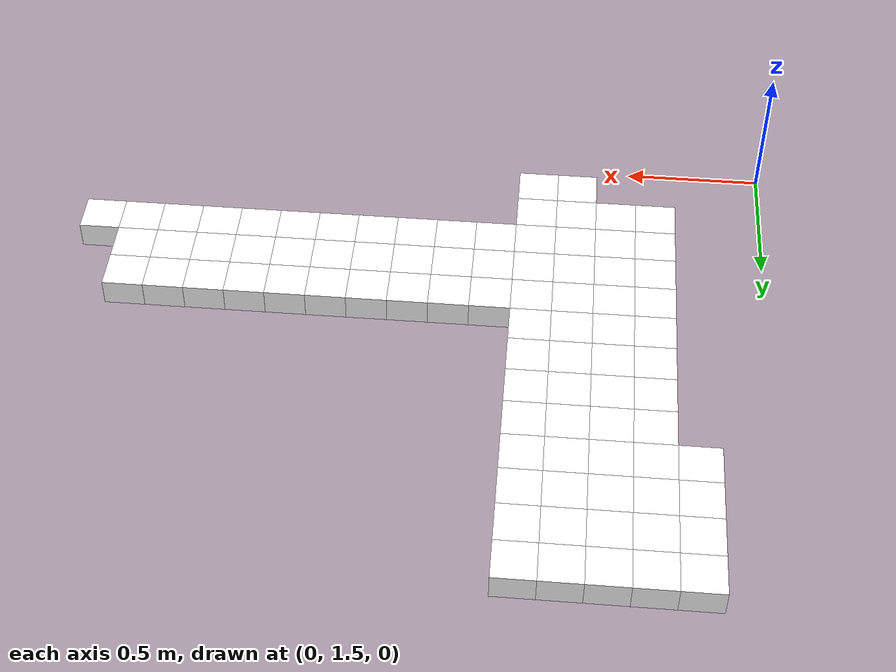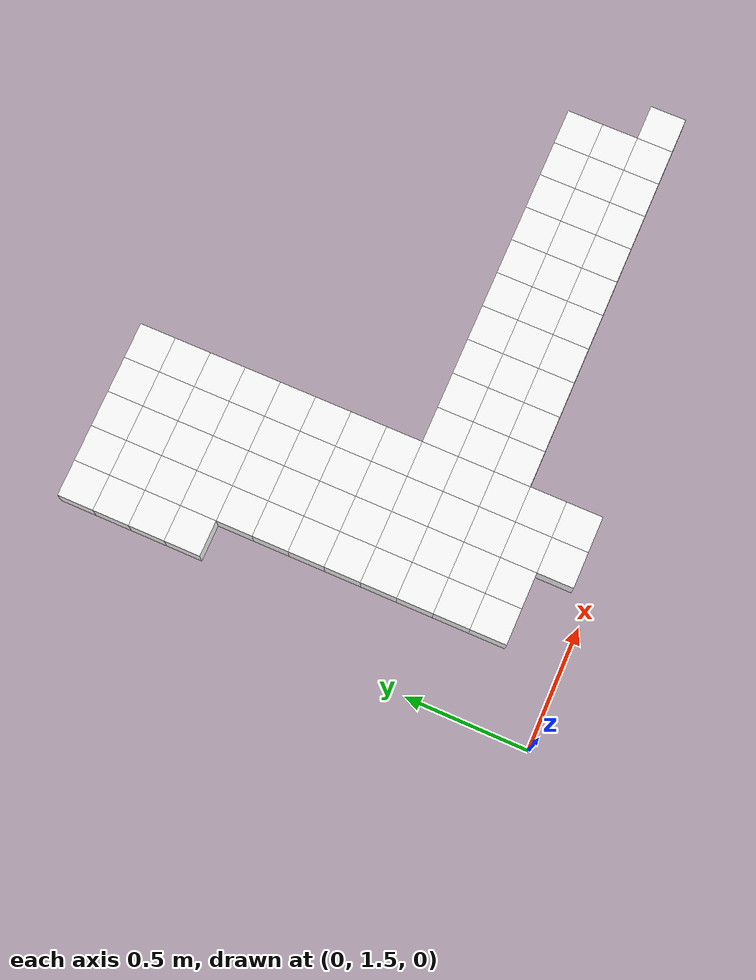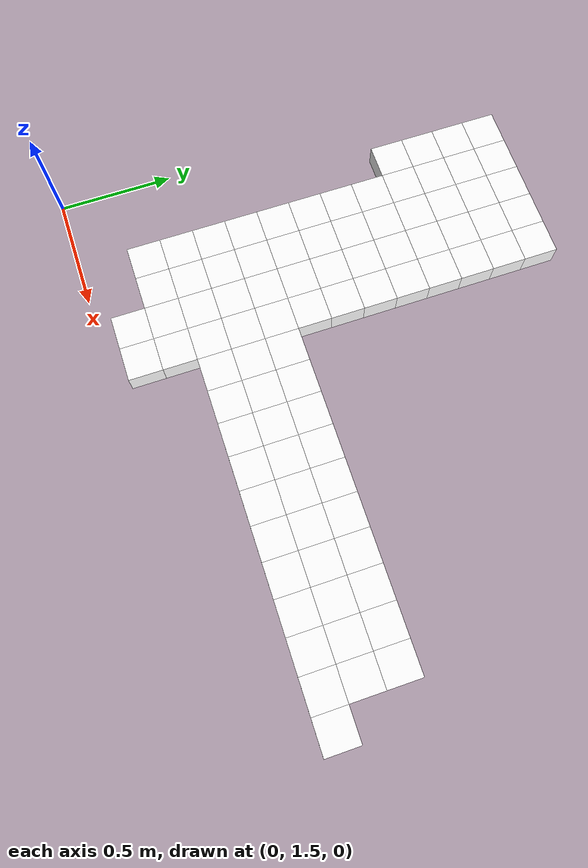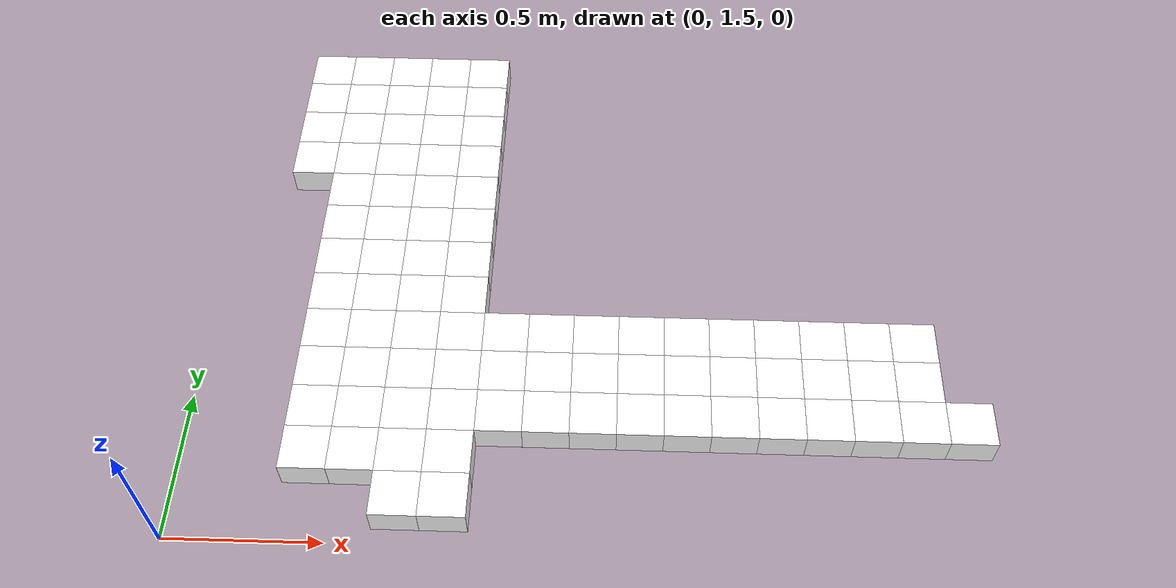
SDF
<sdf version="1.7">
 <world name="default">
  <include><uri>model://sun</uri></include>
  <model name="static_environment">
   <static>true</static>
   <link name="region_158">
    <pose>0.6999999999999993 1.65 0.0 0.0 0.0 0.0</pose>
    <collision name="region_158_collision">
     <geometry><box><size>0.15 0.15 0.1</size></box></geometry>
     <surface><friction><ode><mu>1.0</mu><mu2>1.0</mu2></ode></friction></surface>
    </collision>
    <visual name="region_158_visual">
     <geometry><box><size>0.15 0.15 0.1</size></box></geometry>
     <material><ambient>1.0 1.0 1.0 1.0</ambient><diffuse>1.0 1.0 1.0 1.0</diffuse></material>
    </visual>
   </link>
   <link name="region_159">
    <pose>0.8499999999999992 1.65 0.0 0.0 0.0 0.0</pose>
    <collision name="region_159_collision">
     <geometry><box><size>0.15 0.15 0.1</size></box></geometry>
     <surface><friction><ode><mu>1.0</mu><mu2>1.0</mu2></ode></friction></surface>
    </collision>
    <visual name="region_159_visual">
     <geometry><box><size>0.15 0.15 0.1</size></box></geometry>
     <material><ambient>1.0 1.0 1.0 1.0</ambient><diffuse>1.0 1.0 1.0 1.0</diffuse></material>
    </visual>
   </link>
   <link name="region_176">
    <pose>0.39999999999999947 1.7999999999999998 0.0 0.0 0.0 0.0</pose>
    <collision name="region_176_collision">
     <geometry><box><size>0.15 0.15 0.1</size></box></geometry>
     <surface><friction><ode><mu>1.0</mu><mu2>1.0</mu2></ode></friction></surface>
    </collision>
    <visual name="region_176_visual">
     <geometry><box><size>0.15 0.15 0.1</size></box></geometry>
     <material><ambient>1.0 1.0 1.0 1.0</ambient><diffuse>1.0 1.0 1.0 1.0</diffuse></material>
    </visual>
   </link>
   <link name="region_177">
    <pose>0.5499999999999994 1.7999999999999998 0.0 0.0 0.0 0.0</pose>
    <collision name="region_177_collision">
     <geometry><box><size>0.15 0.15 0.1</size></box></geometry>
     <surface><friction><ode><mu>1.0</mu><mu2>1.0</mu2></ode></friction></surface>
    </collision>
    <visual name="region_177_visual">
     <geometry><box><size>0.15 0.15 0.1</size></box></geometry>
     <material><ambient>1.0 1.0 1.0 1.0</ambient><diffuse>1.0 1.0 1.0 1.0</diffuse></material>
    </visual>
   </link>
   <link name="region_178">
    <pose>0.6999999999999993 1.7999999999999998 0.0 0.0 0.0 0.0</pose>
    <collision name="region_178_collision">
     <geometry><box><size>0.15 0.15 0.1</size></box></geometry>
     <surface><friction><ode><mu>1.0</mu><mu2>1.0</mu2></ode></friction></surface>
    </collision>
    <visual name="region_178_visual">
     <geometry><box><size>0.15 0.15 0.1</size></box></geometry>
     <material><ambient>1.0 1.0 1.0 1.0</ambient><diffuse>1.0 1.0 1.0 1.0</diffuse></material>
    </visual>
   </link>
   <link name="region_179">
    <pose>0.8499999999999992 1.7999999999999998 0.0 0.0 0.0 0.0</pose>
    <collision name="region_179_collision">
     <geometry><box><size>0.15 0.15 0.1</size></box></geometry>
     <surface><friction><ode><mu>1.0</mu><mu2>1.0</mu2></ode></friction></surface>
    </collision>
    <visual name="region_179_visual">
     <geometry><box><size>0.15 0.15 0.1</size></box></geometry>
     <material><ambient>1.0 1.0 1.0 1.0</ambient><diffuse>1.0 1.0 1.0 1.0</diffuse></material>
    </visual>
   </link>
   <link name="region_196">
    <pose>0.39999999999999947 1.9499999999999997 0.0 0.0 0.0 0.0</pose>
    <collision name="region_196_collision">
     <geometry><box><size>0.15 0.15 0.1</size></box></geometry>
     <surface><friction><ode><mu>1.0</mu><mu2>1.0</mu2></ode></friction></surface>
    </collision>
    <visual name="region_196_visual">
     <geometry><box><size>0.15 0.15 0.1</size></box></geometry>
     <material><ambient>1.0 1.0 1.0 1.0</ambient><diffuse>1.0 1.0 1.0 1.0</diffuse></material>
    </visual>
   </link>
   <link name="region_197">
    <pose>0.5499999999999994 1.9499999999999997 0.0 0.0 0.0 0.0</pose>
    <collision name="region_197_collision">
     <geometry><box><size>0.15 0.15 0.1</size></box></geometry>
     <surface><friction><ode><mu>1.0</mu><mu2>1.0</mu2></ode></friction></surface>
    </collision>
    <visual name="region_197_visual">
     <geometry><box><size>0.15 0.15 0.1</size></box></geometry>
     <material><ambient>1.0 1.0 1.0 1.0</ambient><diffuse>1.0 1.0 1.0 1.0</diffuse></material>
    </visual>
   </link>
   <link name="region_198">
    <pose>0.6999999999999993 1.9499999999999997 0.0 0.0 0.0 0.0</pose>
    <collision name="region_198_collision">
     <geometry><box><size>0.15 0.15 0.1</size></box></geometry>
     <surface><friction><ode><mu>1.0</mu><mu2>1.0</mu2></ode></friction></surface>
    </collision>
    <visual name="region_198_visual">
     <geometry><box><size>0.15 0.15 0.1</size></box></geometry>
     <material><ambient>1.0 1.0 1.0 1.0</ambient><diffuse>1.0 1.0 1.0 1.0</diffuse></material>
    </visual>
   </link>
   <link name="region_199">
    <pose>0.8499999999999992 1.9499999999999997 0.0 0.0 0.0 0.0</pose>
    <collision name="region_199_collision">
     <geometry><box><size>0.15 0.15 0.1</size></box></geometry>
     <surface><friction><ode><mu>1.0</mu><mu2>1.0</mu2></ode></friction></surface>
    </collision>
    <visual name="region_199_visual">
     <geometry><box><size>0.15 0.15 0.1</size></box></geometry>
     <material><ambient>1.0 1.0 1.0 1.0</ambient><diffuse>1.0 1.0 1.0 1.0</diffuse></material>
    </visual>
   </link>
   <link name="region_216">
    <pose>0.39999999999999947 2.0999999999999996 0.0 0.0 0.0 0.0</pose>
    <collision name="region_216_collision">
     <geometry><box><size>0.15 0.15 0.1</size></box></geometry>
     <surface><friction><ode><mu>1.0</mu><mu2>1.0</mu2></ode></friction></surface>
    </collision>
    <visual name="region_216_visual">
     <geometry><box><size>0.15 0.15 0.1</size></box></geometry>
     <material><ambient>1.0 1.0 1.0 1.0</ambient><diffuse>1.0 1.0 1.0 1.0</diffuse></material>
    </visual>
   </link>
   <link name="region_217">
    <pose>0.5499999999999994 2.0999999999999996 0.0 0.0 0.0 0.0</pose>
    <collision name="region_217_collision">
     <geometry><box><size>0.15 0.15 0.1</size></box></geometry>
     <surface><friction><ode><mu>1.0</mu><mu2>1.0</mu2></ode></friction></surface>
    </collision>
    <visual name="region_217_visual">
     <geometry><box><size>0.15 0.15 0.1</size></box></geometry>
     <material><ambient>1.0 1.0 1.0 1.0</ambient><diffuse>1.0 1.0 1.0 1.0</diffuse></material>
    </visual>
   </link>
   <link name="region_218">
    <pose>0.6999999999999993 2.0999999999999996 0.0 0.0 0.0 0.0</pose>
    <collision name="region_218_collision">
     <geometry><box><size>0.15 0.15 0.1</size></box></geometry>
     <surface><friction><ode><mu>1.0</mu><mu2>1.0</mu2></ode></friction></surface>
    </collision>
    <visual name="region_218_visual">
     <geometry><box><size>0.15 0.15 0.1</size></box></geometry>
     <material><ambient>1.0 1.0 1.0 1.0</ambient><diffuse>1.0 1.0 1.0 1.0</diffuse></material>
    </visual>
   </link>
   <link name="region_219">
    <pose>0.8499999999999992 2.0999999999999996 0.0 0.0 0.0 0.0</pose>
    <collision name="region_219_collision">
     <geometry><box><size>0.15 0.15 0.1</size></box></geometry>
     <surface><friction><ode><mu>1.0</mu><mu2>1.0</mu2></ode></friction></surface>
    </collision>
    <visual name="region_219_visual">
     <geometry><box><size>0.15 0.15 0.1</size></box></geometry>
     <material><ambient>1.0 1.0 1.0 1.0</ambient><diffuse>1.0 1.0 1.0 1.0</diffuse></material>
    </visual>
   </link>
   <link name="region_236">
    <pose>0.39999999999999947 2.2499999999999996 0.0 0.0 0.0 0.0</pose>
    <collision name="region_236_collision">
     <geometry><box><size>0.15 0.15 0.1</size></box></geometry>
     <surface><friction><ode><mu>1.0</mu><mu2>1.0</mu2></ode></friction></surface>
    </collision>
    <visual name="region_236_visual">
     <geometry><box><size>0.15 0.15 0.1</size></box></geometry>
     <material><ambient>1.0 1.0 1.0 1.0</ambient><diffuse>1.0 1.0 1.0 1.0</diffuse></material>
    </visual>
   </link>
   <link name="region_237">
    <pose>0.5499999999999994 2.2499999999999996 0.0 0.0 0.0 0.0</pose>
    <collision name="region_237_collision">
     <geometry><box><size>0.15 0.15 0.1</size></box></geometry>
     <surface><friction><ode><mu>1.0</mu><mu2>1.0</mu2></ode></friction></surface>
    </collision>
    <visual name="region_237_visual">
     <geometry><box><size>0.15 0.15 0.1</size></box></geometry>
     <material><ambient>1.0 1.0 1.0 1.0</ambient><diffuse>1.0 1.0 1.0 1.0</diffuse></material>
    </visual>
   </link>
   <link name="region_238">
    <pose>0.6999999999999993 2.2499999999999996 0.0 0.0 0.0 0.0</pose>
    <collision name="region_238_collision">
     <geometry><box><size>0.15 0.15 0.1</size></box></geometry>
     <surface><friction><ode><mu>1.0</mu><mu2>1.0</mu2></ode></friction></surface>
    </collision>
    <visual name="region_238_visual">
     <geometry><box><size>0.15 0.15 0.1</size></box></geometry>
     <material><ambient>1.0 1.0 1.0 1.0</ambient><diffuse>1.0 1.0 1.0 1.0</diffuse></material>
    </visual>
   </link>
   <link name="region_239">
    <pose>0.8499999999999992 2.2499999999999996 0.0 0.0 0.0 0.0</pose>
    <collision name="region_239_collision">
     <geometry><box><size>0.15 0.15 0.1</size></box></geometry>
     <surface><friction><ode><mu>1.0</mu><mu2>1.0</mu2></ode></friction></surface>
    </collision>
    <visual name="region_239_visual">
     <geometry><box><size>0.15 0.15 0.1</size></box></geometry>
     <material><ambient>1.0 1.0 1.0 1.0</ambient><diffuse>1.0 1.0 1.0 1.0</diffuse></material>
    </visual>
   </link>
   <link name="region_256">
    <pose>0.39999999999999947 2.3999999999999995 0.0 0.0 0.0 0.0</pose>
    <collision name="region_256_collision">
     <geometry><box><size>0.15 0.15 0.1</size></box></geometry>
     <surface><friction><ode><mu>1.0</mu><mu2>1.0</mu2></ode></friction></surface>
    </collision>
    <visual name="region_256_visual">
     <geometry><box><size>0.15 0.15 0.1</size></box></geometry>
     <material><ambient>1.0 1.0 1.0 1.0</ambient><diffuse>1.0 1.0 1.0 1.0</diffuse></material>
    </visual>
   </link>
   <link name="region_257">
    <pose>0.5499999999999994 2.3999999999999995 0.0 0.0 0.0 0.0</pose>
    <collision name="region_257_collision">
     <geometry><box><size>0.15 0.15 0.1</size></box></geometry>
     <surface><friction><ode><mu>1.0</mu><mu2>1.0</mu2></ode></friction></surface>
    </collision>
    <visual name="region_257_visual">
     <geometry><box><size>0.15 0.15 0.1</size></box></geometry>
     <material><ambient>1.0 1.0 1.0 1.0</ambient><diffuse>1.0 1.0 1.0 1.0</diffuse></material>
    </visual>
   </link>
   <link name="region_258">
    <pose>0.6999999999999993 2.3999999999999995 0.0 0.0 0.0 0.0</pose>
    <collision name="region_258_collision">
     <geometry><box><size>0.15 0.15 0.1</size></box></geometry>
     <surface><friction><ode><mu>1.0</mu><mu2>1.0</mu2></ode></friction></surface>
    </collision>
    <visual name="region_258_visual">
     <geometry><box><size>0.15 0.15 0.1</size></box></geometry>
     <material><ambient>1.0 1.0 1.0 1.0</ambient><diffuse>1.0 1.0 1.0 1.0</diffuse></material>
    </visual>
   </link>
   <link name="region_259">
    <pose>0.8499999999999992 2.3999999999999995 0.0 0.0 0.0 0.0</pose>
    <collision name="region_259_collision">
     <geometry><box><size>0.15 0.15 0.1</size></box></geometry>
     <surface><friction><ode><mu>1.0</mu><mu2>1.0</mu2></ode></friction></surface>
    </collision>
    <visual name="region_259_visual">
     <geometry><box><size>0.15 0.15 0.1</size></box></geometry>
     <material><ambient>1.0 1.0 1.0 1.0</ambient><diffuse>1.0 1.0 1.0 1.0</diffuse></material>
    </visual>
   </link>
   <link name="region_276">
    <pose>0.39999999999999947 2.5499999999999994 0.0 0.0 0.0 0.0</pose>
    <collision name="region_276_collision">
     <geometry><box><size>0.15 0.15 0.1</size></box></geometry>
     <surface><friction><ode><mu>1.0</mu><mu2>1.0</mu2></ode></friction></surface>
    </collision>
    <visual name="region_276_visual">
     <geometry><box><size>0.15 0.15 0.1</size></box></geometry>
     <material><ambient>1.0 1.0 1.0 1.0</ambient><diffuse>1.0 1.0 1.0 1.0</diffuse></material>
    </visual>
   </link>
   <link name="region_277">
    <pose>0.5499999999999994 2.5499999999999994 0.0 0.0 0.0 0.0</pose>
    <collision name="region_277_collision">
     <geometry><box><size>0.15 0.15 0.1</size></box></geometry>
     <surface><friction><ode><mu>1.0</mu><mu2>1.0</mu2></ode></friction></surface>
    </collision>
    <visual name="region_277_visual">
     <geometry><box><size>0.15 0.15 0.1</size></box></geometry>
     <material><ambient>1.0 1.0 1.0 1.0</ambient><diffuse>1.0 1.0 1.0 1.0</diffuse></material>
    </visual>
   </link>
   <link name="region_278">
    <pose>0.6999999999999993 2.5499999999999994 0.0 0.0 0.0 0.0</pose>
    <collision name="region_278_collision">
     <geometry><box><size>0.15 0.15 0.1</size></box></geometry>
     <surface><friction><ode><mu>1.0</mu><mu2>1.0</mu2></ode></friction></surface>
    </collision>
    <visual name="region_278_visual">
     <geometry><box><size>0.15 0.15 0.1</size></box></geometry>
     <material><ambient>1.0 1.0 1.0 1.0</ambient><diffuse>1.0 1.0 1.0 1.0</diffuse></material>
    </visual>
   </link>
   <link name="region_279">
    <pose>0.8499999999999992 2.5499999999999994 0.0 0.0 0.0 0.0</pose>
    <collision name="region_279_collision">
     <geometry><box><size>0.15 0.15 0.1</size></box></geometry>
     <surface><friction><ode><mu>1.0</mu><mu2>1.0</mu2></ode></friction></surface>
    </collision>
    <visual name="region_279_visual">
     <geometry><box><size>0.15 0.15 0.1</size></box></geometry>
     <material><ambient>1.0 1.0 1.0 1.0</ambient><diffuse>1.0 1.0 1.0 1.0</diffuse></material>
    </visual>
   </link>
   <link name="region_296">
    <pose>0.39999999999999947 2.6999999999999997 0.0 0.0 0.0 0.0</pose>
    <collision name="region_296_collision">
     <geometry><box><size>0.15 0.15 0.1</size></box></geometry>
     <surface><friction><ode><mu>1.0</mu><mu2>1.0</mu2></ode></friction></surface>
    </collision>
    <visual name="region_296_visual">
     <geometry><box><size>0.15 0.15 0.1</size></box></geometry>
     <material><ambient>1.0 1.0 1.0 1.0</ambient><diffuse>1.0 1.0 1.0 1.0</diffuse></material>
    </visual>
   </link>
   <link name="region_297">
    <pose>0.5499999999999994 2.6999999999999997 0.0 0.0 0.0 0.0</pose>
    <collision name="region_297_collision">
     <geometry><box><size>0.15 0.15 0.1</size></box></geometry>
     <surface><friction><ode><mu>1.0</mu><mu2>1.0</mu2></ode></friction></surface>
    </collision>
    <visual name="region_297_visual">
     <geometry><box><size>0.15 0.15 0.1</size></box></geometry>
     <material><ambient>1.0 1.0 1.0 1.0</ambient><diffuse>1.0 1.0 1.0 1.0</diffuse></material>
    </visual>
   </link>
   <link name="region_298">
    <pose>0.6999999999999993 2.6999999999999997 0.0 0.0 0.0 0.0</pose>
    <collision name="region_298_collision">
     <geometry><box><size>0.15 0.15 0.1</size></box></geometry>
     <surface><friction><ode><mu>1.0</mu><mu2>1.0</mu2></ode></friction></surface>
    </collision>
    <visual name="region_298_visual">
     <geometry><box><size>0.15 0.15 0.1</size></box></geometry>
     <material><ambient>1.0 1.0 1.0 1.0</ambient><diffuse>1.0 1.0 1.0 1.0</diffuse></material>
    </visual>
   </link>
   <link name="region_299">
    <pose>0.8499999999999992 2.6999999999999997 0.0 0.0 0.0 0.0</pose>
    <collision name="region_299_collision">
     <geometry><box><size>0.15 0.15 0.1</size></box></geometry>
     <surface><friction><ode><mu>1.0</mu><mu2>1.0</mu2></ode></friction></surface>
    </collision>
    <visual name="region_299_visual">
     <geometry><box><size>0.15 0.15 0.1</size></box></geometry>
     <material><ambient>1.0 1.0 1.0 1.0</ambient><diffuse>1.0 1.0 1.0 1.0</diffuse></material>
    </visual>
   </link>
   <link name="region_316">
    <pose>0.39999999999999947 2.8499999999999996 0.0 0.0 0.0 0.0</pose>
    <collision name="region_316_collision">
     <geometry><box><size>0.15 0.15 0.1</size></box></geometry>
     <surface><friction><ode><mu>1.0</mu><mu2>1.0</mu2></ode></friction></surface>
    </collision>
    <visual name="region_316_visual">
     <geometry><box><size>0.15 0.15 0.1</size></box></geometry>
     <material><ambient>1.0 1.0 1.0 1.0</ambient><diffuse>1.0 1.0 1.0 1.0</diffuse></material>
    </visual>
   </link>
   <link name="region_317">
    <pose>0.5499999999999994 2.8499999999999996 0.0 0.0 0.0 0.0</pose>
    <collision name="region_317_collision">
     <geometry><box><size>0.15 0.15 0.1</size></box></geometry>
     <surface><friction><ode><mu>1.0</mu><mu2>1.0</mu2></ode></friction></surface>
    </collision>
    <visual name="region_317_visual">
     <geometry><box><size>0.15 0.15 0.1</size></box></geometry>
     <material><ambient>1.0 1.0 1.0 1.0</ambient><diffuse>1.0 1.0 1.0 1.0</diffuse></material>
    </visual>
   </link>
   <link name="region_318">
    <pose>0.6999999999999993 2.8499999999999996 0.0 0.0 0.0 0.0</pose>
    <collision name="region_318_collision">
     <geometry><box><size>0.15 0.15 0.1</size></box></geometry>
     <surface><friction><ode><mu>1.0</mu><mu2>1.0</mu2></ode></friction></surface>
    </collision>
    <visual name="region_318_visual">
     <geometry><box><size>0.15 0.15 0.1</size></box></geometry>
     <material><ambient>1.0 1.0 1.0 1.0</ambient><diffuse>1.0 1.0 1.0 1.0</diffuse></material>
    </visual>
   </link>
   <link name="region_319">
    <pose>0.8499999999999992 2.8499999999999996 0.0 0.0 0.0 0.0</pose>
    <collision name="region_319_collision">
     <geometry><box><size>0.15 0.15 0.1</size></box></geometry>
     <surface><friction><ode><mu>1.0</mu><mu2>1.0</mu2></ode></friction></surface>
    </collision>
    <visual name="region_319_visual">
     <geometry><box><size>0.15 0.15 0.1</size></box></geometry>
     <material><ambient>1.0 1.0 1.0 1.0</ambient><diffuse>1.0 1.0 1.0 1.0</diffuse></material>
    </visual>
   </link>
   <link name="region_335">
    <pose>0.24999999999999956 2.9999999999999996 0.0 0.0 0.0 0.0</pose>
    <collision name="region_335_collision">
     <geometry><box><size>0.15 0.15 0.1</size></box></geometry>
     <surface><friction><ode><mu>1.0</mu><mu2>1.0</mu2></ode></friction></surface>
    </collision>
    <visual name="region_335_visual">
     <geometry><box><size>0.15 0.15 0.1</size></box></geometry>
     <material><ambient>1.0 1.0 1.0 1.0</ambient><diffuse>1.0 1.0 1.0 1.0</diffuse></material>
    </visual>
   </link>
   <link name="region_336">
    <pose>0.39999999999999947 2.9999999999999996 0.0 0.0 0.0 0.0</pose>
    <collision name="region_336_collision">
     <geometry><box><size>0.15 0.15 0.1</size></box></geometry>
     <surface><friction><ode><mu>1.0</mu><mu2>1.0</mu2></ode></friction></surface>
    </collision>
    <visual name="region_336_visual">
     <geometry><box><size>0.15 0.15 0.1</size></box></geometry>
     <material><ambient>1.0 1.0 1.0 1.0</ambient><diffuse>1.0 1.0 1.0 1.0</diffuse></material>
    </visual>
   </link>
   <link name="region_337">
    <pose>0.5499999999999994 2.9999999999999996 0.0 0.0 0.0 0.0</pose>
    <collision name="region_337_collision">
     <geometry><box><size>0.15 0.15 0.1</size></box></geometry>
     <surface><friction><ode><mu>1.0</mu><mu2>1.0</mu2></ode></friction></surface>
    </collision>
    <visual name="region_337_visual">
     <geometry><box><size>0.15 0.15 0.1</size></box></geometry>
     <material><ambient>1.0 1.0 1.0 1.0</ambient><diffuse>1.0 1.0 1.0 1.0</diffuse></material>
    </visual>
   </link>
   <link name="region_338">
    <pose>0.6999999999999993 2.9999999999999996 0.0 0.0 0.0 0.0</pose>
    <collision name="region_338_collision">
     <geometry><box><size>0.15 0.15 0.1</size></box></geometry>
     <surface><friction><ode><mu>1.0</mu><mu2>1.0</mu2></ode></friction></surface>
    </collision>
    <visual name="region_338_visual">
     <geometry><box><size>0.15 0.15 0.1</size></box></geometry>
     <material><ambient>1.0 1.0 1.0 1.0</ambient><diffuse>1.0 1.0 1.0 1.0</diffuse></material>
    </visual>
   </link>
   <link name="region_339">
    <pose>0.8499999999999992 2.9999999999999996 0.0 0.0 0.0 0.0</pose>
    <collision name="region_339_collision">
     <geometry><box><size>0.15 0.15 0.1</size></box></geometry>
     <surface><friction><ode><mu>1.0</mu><mu2>1.0</mu2></ode></friction></surface>
    </collision>
    <visual name="region_339_visual">
     <geometry><box><size>0.15 0.15 0.1</size></box></geometry>
     <material><ambient>1.0 1.0 1.0 1.0</ambient><diffuse>1.0 1.0 1.0 1.0</diffuse></material>
    </visual>
   </link>
   <link name="region_355">
    <pose>0.24999999999999956 3.1499999999999995 0.0 0.0 0.0 0.0</pose>
    <collision name="region_355_collision">
     <geometry><box><size>0.15 0.15 0.1</size></box></geometry>
     <surface><friction><ode><mu>1.0</mu><mu2>1.0</mu2></ode></friction></surface>
    </collision>
    <visual name="region_355_visual">
     <geometry><box><size>0.15 0.15 0.1</size></box></geometry>
     <material><ambient>1.0 1.0 1.0 1.0</ambient><diffuse>1.0 1.0 1.0 1.0</diffuse></material>
    </visual>
   </link>
   <link name="region_356">
    <pose>0.39999999999999947 3.1499999999999995 0.0 0.0 0.0 0.0</pose>
    <collision name="region_356_collision">
     <geometry><box><size>0.15 0.15 0.1</size></box></geometry>
     <surface><friction><ode><mu>1.0</mu><mu2>1.0</mu2></ode></friction></surface>
    </collision>
    <visual name="region_356_visual">
     <geometry><box><size>0.15 0.15 0.1</size></box></geometry>
     <material><ambient>1.0 1.0 1.0 1.0</ambient><diffuse>1.0 1.0 1.0 1.0</diffuse></material>
    </visual>
   </link>
   <link name="region_357">
    <pose>0.5499999999999994 3.1499999999999995 0.0 0.0 0.0 0.0</pose>
    <collision name="region_357_collision">
     <geometry><box><size>0.15 0.15 0.1</size></box></geometry>
     <surface><friction><ode><mu>1.0</mu><mu2>1.0</mu2></ode></friction></surface>
    </collision>
    <visual name="region_357_visual">
     <geometry><box><size>0.15 0.15 0.1</size></box></geometry>
     <material><ambient>1.0 1.0 1.0 1.0</ambient><diffuse>1.0 1.0 1.0 1.0</diffuse></material>
    </visual>
   </link>
   <link name="region_358">
    <pose>0.6999999999999993 3.1499999999999995 0.0 0.0 0.0 0.0</pose>
    <collision name="region_358_collision">
     <geometry><box><size>0.15 0.15 0.1</size></box></geometry>
     <surface><friction><ode><mu>1.0</mu><mu2>1.0</mu2></ode></friction></surface>
    </collision>
    <visual name="region_358_visual">
     <geometry><box><size>0.15 0.15 0.1</size></box></geometry>
     <material><ambient>1.0 1.0 1.0 1.0</ambient><diffuse>1.0 1.0 1.0 1.0</diffuse></material>
    </visual>
   </link>
   <link name="region_359">
    <pose>0.8499999999999992 3.1499999999999995 0.0 0.0 0.0 0.0</pose>
    <collision name="region_359_collision">
     <geometry><box><size>0.15 0.15 0.1</size></box></geometry>
     <surface><friction><ode><mu>1.0</mu><mu2>1.0</mu2></ode></friction></surface>
    </collision>
    <visual name="region_359_visual">
     <geometry><box><size>0.15 0.15 0.1</size></box></geometry>
     <material><ambient>1.0 1.0 1.0 1.0</ambient><diffuse>1.0 1.0 1.0 1.0</diffuse></material>
    </visual>
   </link>
   <link name="region_375">
    <pose>0.24999999999999956 3.2999999999999994 0.0 0.0 0.0 0.0</pose>
    <collision name="region_375_collision">
     <geometry><box><size>0.15 0.15 0.1</size></box></geometry>
     <surface><friction><ode><mu>1.0</mu><mu2>1.0</mu2></ode></friction></surface>
    </collision>
    <visual name="region_375_visual">
     <geometry><box><size>0.15 0.15 0.1</size></box></geometry>
     <material><ambient>1.0 1.0 1.0 1.0</ambient><diffuse>1.0 1.0 1.0 1.0</diffuse></material>
    </visual>
   </link>
   <link name="region_376">
    <pose>0.39999999999999947 3.2999999999999994 0.0 0.0 0.0 0.0</pose>
    <collision name="region_376_collision">
     <geometry><box><size>0.15 0.15 0.1</size></box></geometry>
     <surface><friction><ode><mu>1.0</mu><mu2>1.0</mu2></ode></friction></surface>
    </collision>
    <visual name="region_376_visual">
     <geometry><box><size>0.15 0.15 0.1</size></box></geometry>
     <material><ambient>1.0 1.0 1.0 1.0</ambient><diffuse>1.0 1.0 1.0 1.0</diffuse></material>
    </visual>
   </link>
   <link name="region_377">
    <pose>0.5499999999999994 3.2999999999999994 0.0 0.0 0.0 0.0</pose>
    <collision name="region_377_collision">
     <geometry><box><size>0.15 0.15 0.1</size></box></geometry>
     <surface><friction><ode><mu>1.0</mu><mu2>1.0</mu2></ode></friction></surface>
    </collision>
    <visual name="region_377_visual">
     <geometry><box><size>0.15 0.15 0.1</size></box></geometry>
     <material><ambient>1.0 1.0 1.0 1.0</ambient><diffuse>1.0 1.0 1.0 1.0</diffuse></material>
    </visual>
   </link>
   <link name="region_378">
    <pose>0.6999999999999993 3.2999999999999994 0.0 0.0 0.0 0.0</pose>
    <collision name="region_378_collision">
     <geometry><box><size>0.15 0.15 0.1</size></box></geometry>
     <surface><friction><ode><mu>1.0</mu><mu2>1.0</mu2></ode></friction></surface>
    </collision>
    <visual name="region_378_visual">
     <geometry><box><size>0.15 0.15 0.1</size></box></geometry>
     <material><ambient>1.0 1.0 1.0 1.0</ambient><diffuse>1.0 1.0 1.0 1.0</diffuse></material>
    </visual>
   </link>
   <link name="region_379">
    <pose>0.8499999999999992 3.2999999999999994 0.0 0.0 0.0 0.0</pose>
    <collision name="region_379_collision">
     <geometry><box><size>0.15 0.15 0.1</size></box></geometry>
     <surface><friction><ode><mu>1.0</mu><mu2>1.0</mu2></ode></friction></surface>
    </collision>
    <visual name="region_379_visual">
     <geometry><box><size>0.15 0.15 0.1</size></box></geometry>
     <material><ambient>1.0 1.0 1.0 1.0</ambient><diffuse>1.0 1.0 1.0 1.0</diffuse></material>
    </visual>
   </link>
   <link name="region_395">
    <pose>0.24999999999999956 3.4499999999999993 0.0 0.0 0.0 0.0</pose>
    <collision name="region_395_collision">
     <geometry><box><size>0.15 0.15 0.1</size></box></geometry>
     <surface><friction><ode><mu>1.0</mu><mu2>1.0</mu2></ode></friction></surface>
    </collision>
    <visual name="region_395_visual">
     <geometry><box><size>0.15 0.15 0.1</size></box></geometry>
     <material><ambient>1.0 1.0 1.0 1.0</ambient><diffuse>1.0 1.0 1.0 1.0</diffuse></material>
    </visual>
   </link>
   <link name="region_396">
    <pose>0.39999999999999947 3.4499999999999993 0.0 0.0 0.0 0.0</pose>
    <collision name="region_396_collision">
     <geometry><box><size>0.15 0.15 0.1</size></box></geometry>
     <surface><friction><ode><mu>1.0</mu><mu2>1.0</mu2></ode></friction></surface>
    </collision>
    <visual name="region_396_visual">
     <geometry><box><size>0.15 0.15 0.1</size></box></geometry>
     <material><ambient>1.0 1.0 1.0 1.0</ambient><diffuse>1.0 1.0 1.0 1.0</diffuse></material>
    </visual>
   </link>
   <link name="region_397">
    <pose>0.5499999999999994 3.4499999999999993 0.0 0.0 0.0 0.0</pose>
    <collision name="region_397_collision">
     <geometry><box><size>0.15 0.15 0.1</size></box></geometry>
     <surface><friction><ode><mu>1.0</mu><mu2>1.0</mu2></ode></friction></surface>
    </collision>
    <visual name="region_397_visual">
     <geometry><box><size>0.15 0.15 0.1</size></box></geometry>
     <material><ambient>1.0 1.0 1.0 1.0</ambient><diffuse>1.0 1.0 1.0 1.0</diffuse></material>
    </visual>
   </link>
   <link name="region_398">
    <pose>0.6999999999999993 3.4499999999999993 0.0 0.0 0.0 0.0</pose>
    <collision name="region_398_collision">
     <geometry><box><size>0.15 0.15 0.1</size></box></geometry>
     <surface><friction><ode><mu>1.0</mu><mu2>1.0</mu2></ode></friction></surface>
    </collision>
    <visual name="region_398_visual">
     <geometry><box><size>0.15 0.15 0.1</size></box></geometry>
     <material><ambient>1.0 1.0 1.0 1.0</ambient><diffuse>1.0 1.0 1.0 1.0</diffuse></material>
    </visual>
   </link>
   <link name="region_399">
    <pose>0.8499999999999992 3.4499999999999993 0.0 0.0 0.0 0.0</pose>
    <collision name="region_399_collision">
     <geometry><box><size>0.15 0.15 0.1</size></box></geometry>
     <surface><friction><ode><mu>1.0</mu><mu2>1.0</mu2></ode></friction></surface>
    </collision>
    <visual name="region_399_visual">
     <geometry><box><size>0.15 0.15 0.1</size></box></geometry>
     <material><ambient>1.0 1.0 1.0 1.0</ambient><diffuse>1.0 1.0 1.0 1.0</diffuse></material>
    </visual>
   </link>
   <link name="region_400">
    <pose>1.0 1.9499999999999997 0.0 0.0 0.0 0.0</pose>
    <collision name="region_400_collision">
     <geometry><box><size>0.15 0.15 0.1</size></box></geometry>
     <surface><friction><ode><mu>1.0</mu><mu2>1.0</mu2></ode></friction></surface>
    </collision>
    <visual name="region_400_visual">
     <geometry><box><size>0.15 0.15 0.1</size></box></geometry>
     <material><ambient>1.0 1.0 1.0 1.0</ambient><diffuse>1.0 1.0 1.0 1.0</diffuse></material>
    </visual>
   </link>
   <link name="region_401">
    <pose>1.15 1.9499999999999997 0.0 0.0 0.0 0.0</pose>
    <collision name="region_401_collision">
     <geometry><box><size>0.15 0.15 0.1</size></box></geometry>
     <surface><friction><ode><mu>1.0</mu><mu2>1.0</mu2></ode></friction></surface>
    </collision>
    <visual name="region_401_visual">
     <geometry><box><size>0.15 0.15 0.1</size></box></geometry>
     <material><ambient>1.0 1.0 1.0 1.0</ambient><diffuse>1.0 1.0 1.0 1.0</diffuse></material>
    </visual>
   </link>
   <link name="region_402">
    <pose>1.2999999999999998 1.9499999999999997 0.0 0.0 0.0 0.0</pose>
    <collision name="region_402_collision">
     <geometry><box><size>0.15 0.15 0.1</size></box></geometry>
     <surface><friction><ode><mu>1.0</mu><mu2>1.0</mu2></ode></friction></surface>
    </collision>
    <visual name="region_402_visual">
     <geometry><box><size>0.15 0.15 0.1</size></box></geometry>
     <material><ambient>1.0 1.0 1.0 1.0</ambient><diffuse>1.0 1.0 1.0 1.0</diffuse></material>
    </visual>
   </link>
   <link name="region_403">
    <pose>1.4499999999999997 1.9499999999999997 0.0 0.0 0.0 0.0</pose>
    <collision name="region_403_collision">
     <geometry><box><size>0.15 0.15 0.1</size></box></geometry>
     <surface><friction><ode><mu>1.0</mu><mu2>1.0</mu2></ode></friction></surface>
    </collision>
    <visual name="region_403_visual">
     <geometry><box><size>0.15 0.15 0.1</size></box></geometry>
     <material><ambient>1.0 1.0 1.0 1.0</ambient><diffuse>1.0 1.0 1.0 1.0</diffuse></material>
    </visual>
   </link>
   <link name="region_404">
    <pose>1.5999999999999996 1.9499999999999997 0.0 0.0 0.0 0.0</pose>
    <collision name="region_404_collision">
     <geometry><box><size>0.15 0.15 0.1</size></box></geometry>
     <surface><friction><ode><mu>1.0</mu><mu2>1.0</mu2></ode></friction></surface>
    </collision>
    <visual name="region_404_visual">
     <geometry><box><size>0.15 0.15 0.1</size></box></geometry>
     <material><ambient>1.0 1.0 1.0 1.0</ambient><diffuse>1.0 1.0 1.0 1.0</diffuse></material>
    </visual>
   </link>
   <link name="region_405">
    <pose>1.7499999999999996 1.9499999999999997 0.0 0.0 0.0 0.0</pose>
    <collision name="region_405_collision">
     <geometry><box><size>0.15 0.15 0.1</size></box></geometry>
     <surface><friction><ode><mu>1.0</mu><mu2>1.0</mu2></ode></friction></surface>
    </collision>
    <visual name="region_405_visual">
     <geometry><box><size>0.15 0.15 0.1</size></box></geometry>
     <material><ambient>1.0 1.0 1.0 1.0</ambient><diffuse>1.0 1.0 1.0 1.0</diffuse></material>
    </visual>
   </link>
   <link name="region_406">
    <pose>1.8999999999999995 1.9499999999999997 0.0 0.0 0.0 0.0</pose>
    <collision name="region_406_collision">
     <geometry><box><size>0.15 0.15 0.1</size></box></geometry>
     <surface><friction><ode><mu>1.0</mu><mu2>1.0</mu2></ode></friction></surface>
    </collision>
    <visual name="region_406_visual">
     <geometry><box><size>0.15 0.15 0.1</size></box></geometry>
     <material><ambient>1.0 1.0 1.0 1.0</ambient><diffuse>1.0 1.0 1.0 1.0</diffuse></material>
    </visual>
   </link>
   <link name="region_407">
    <pose>2.05 1.9499999999999997 0.0 0.0 0.0 0.0</pose>
    <collision name="region_407_collision">
     <geometry><box><size>0.15 0.15 0.1</size></box></geometry>
     <surface><friction><ode><mu>1.0</mu><mu2>1.0</mu2></ode></friction></surface>
    </collision>
    <visual name="region_407_visual">
     <geometry><box><size>0.15 0.15 0.1</size></box></geometry>
     <material><ambient>1.0 1.0 1.0 1.0</ambient><diffuse>1.0 1.0 1.0 1.0</diffuse></material>
    </visual>
   </link>
   <link name="region_408">
    <pose>2.2 1.9499999999999997 0.0 0.0 0.0 0.0</pose>
    <collision name="region_408_collision">
     <geometry><box><size>0.15 0.15 0.1</size></box></geometry>
     <surface><friction><ode><mu>1.0</mu><mu2>1.0</mu2></ode></friction></surface>
    </collision>
    <visual name="region_408_visual">
     <geometry><box><size>0.15 0.15 0.1</size></box></geometry>
     <material><ambient>1.0 1.0 1.0 1.0</ambient><diffuse>1.0 1.0 1.0 1.0</diffuse></material>
    </visual>
   </link>
   <link name="region_409">
    <pose>2.3500000000000005 1.9499999999999997 0.0 0.0 0.0 0.0</pose>
    <collision name="region_409_collision">
     <geometry><box><size>0.15 0.15 0.1</size></box></geometry>
     <surface><friction><ode><mu>1.0</mu><mu2>1.0</mu2></ode></friction></surface>
    </collision>
    <visual name="region_409_visual">
     <geometry><box><size>0.15 0.15 0.1</size></box></geometry>
     <material><ambient>1.0 1.0 1.0 1.0</ambient><diffuse>1.0 1.0 1.0 1.0</diffuse></material>
    </visual>
   </link>
   <link name="region_410">
    <pose>2.500000000000001 1.9499999999999997 0.0 0.0 0.0 0.0</pose>
    <collision name="region_410_collision">
     <geometry><box><size>0.15 0.15 0.1</size></box></geometry>
     <surface><friction><ode><mu>1.0</mu><mu2>1.0</mu2></ode></friction></surface>
    </collision>
    <visual name="region_410_visual">
     <geometry><box><size>0.15 0.15 0.1</size></box></geometry>
     <material><ambient>1.0 1.0 1.0 1.0</ambient><diffuse>1.0 1.0 1.0 1.0</diffuse></material>
    </visual>
   </link>
   <link name="region_420">
    <pose>1.0 2.0999999999999996 0.0 0.0 0.0 0.0</pose>
    <collision name="region_420_collision">
     <geometry><box><size>0.15 0.15 0.1</size></box></geometry>
     <surface><friction><ode><mu>1.0</mu><mu2>1.0</mu2></ode></friction></surface>
    </collision>
    <visual name="region_420_visual">
     <geometry><box><size>0.15 0.15 0.1</size></box></geometry>
     <material><ambient>1.0 1.0 1.0 1.0</ambient><diffuse>1.0 1.0 1.0 1.0</diffuse></material>
    </visual>
   </link>
   <link name="region_421">
    <pose>1.15 2.0999999999999996 0.0 0.0 0.0 0.0</pose>
    <collision name="region_421_collision">
     <geometry><box><size>0.15 0.15 0.1</size></box></geometry>
     <surface><friction><ode><mu>1.0</mu><mu2>1.0</mu2></ode></friction></surface>
    </collision>
    <visual name="region_421_visual">
     <geometry><box><size>0.15 0.15 0.1</size></box></geometry>
     <material><ambient>1.0 1.0 1.0 1.0</ambient><diffuse>1.0 1.0 1.0 1.0</diffuse></material>
    </visual>
   </link>
   <link name="region_422">
    <pose>1.2999999999999998 2.0999999999999996 0.0 0.0 0.0 0.0</pose>
    <collision name="region_422_collision">
     <geometry><box><size>0.15 0.15 0.1</size></box></geometry>
     <surface><friction><ode><mu>1.0</mu><mu2>1.0</mu2></ode></friction></surface>
    </collision>
    <visual name="region_422_visual">
     <geometry><box><size>0.15 0.15 0.1</size></box></geometry>
     <material><ambient>1.0 1.0 1.0 1.0</ambient><diffuse>1.0 1.0 1.0 1.0</diffuse></material>
    </visual>
   </link>
   <link name="region_423">
    <pose>1.4499999999999997 2.0999999999999996 0.0 0.0 0.0 0.0</pose>
    <collision name="region_423_collision">
     <geometry><box><size>0.15 0.15 0.1</size></box></geometry>
     <surface><friction><ode><mu>1.0</mu><mu2>1.0</mu2></ode></friction></surface>
    </collision>
    <visual name="region_423_visual">
     <geometry><box><size>0.15 0.15 0.1</size></box></geometry>
     <material><ambient>1.0 1.0 1.0 1.0</ambient><diffuse>1.0 1.0 1.0 1.0</diffuse></material>
    </visual>
   </link>
   <link name="region_424">
    <pose>1.5999999999999996 2.0999999999999996 0.0 0.0 0.0 0.0</pose>
    <collision name="region_424_collision">
     <geometry><box><size>0.15 0.15 0.1</size></box></geometry>
     <surface><friction><ode><mu>1.0</mu><mu2>1.0</mu2></ode></friction></surface>
    </collision>
    <visual name="region_424_visual">
     <geometry><box><size>0.15 0.15 0.1</size></box></geometry>
     <material><ambient>1.0 1.0 1.0 1.0</ambient><diffuse>1.0 1.0 1.0 1.0</diffuse></material>
    </visual>
   </link>
   <link name="region_425">
    <pose>1.7499999999999996 2.0999999999999996 0.0 0.0 0.0 0.0</pose>
    <collision name="region_425_collision">
     <geometry><box><size>0.15 0.15 0.1</size></box></geometry>
     <surface><friction><ode><mu>1.0</mu><mu2>1.0</mu2></ode></friction></surface>
    </collision>
    <visual name="region_425_visual">
     <geometry><box><size>0.15 0.15 0.1</size></box></geometry>
     <material><ambient>1.0 1.0 1.0 1.0</ambient><diffuse>1.0 1.0 1.0 1.0</diffuse></material>
    </visual>
   </link>
   <link name="region_426">
    <pose>1.8999999999999995 2.0999999999999996 0.0 0.0 0.0 0.0</pose>
    <collision name="region_426_collision">
     <geometry><box><size>0.15 0.15 0.1</size></box></geometry>
     <surface><friction><ode><mu>1.0</mu><mu2>1.0</mu2></ode></friction></surface>
    </collision>
    <visual name="region_426_visual">
     <geometry><box><size>0.15 0.15 0.1</size></box></geometry>
     <material><ambient>1.0 1.0 1.0 1.0</ambient><diffuse>1.0 1.0 1.0 1.0</diffuse></material>
    </visual>
   </link>
   <link name="region_427">
    <pose>2.05 2.0999999999999996 0.0 0.0 0.0 0.0</pose>
    <collision name="region_427_collision">
     <geometry><box><size>0.15 0.15 0.1</size></box></geometry>
     <surface><friction><ode><mu>1.0</mu><mu2>1.0</mu2></ode></friction></surface>
    </collision>
    <visual name="region_427_visual">
     <geometry><box><size>0.15 0.15 0.1</size></box></geometry>
     <material><ambient>1.0 1.0 1.0 1.0</ambient><diffuse>1.0 1.0 1.0 1.0</diffuse></material>
    </visual>
   </link>
   <link name="region_428">
    <pose>2.2 2.0999999999999996 0.0 0.0 0.0 0.0</pose>
    <collision name="region_428_collision">
     <geometry><box><size>0.15 0.15 0.1</size></box></geometry>
     <surface><friction><ode><mu>1.0</mu><mu2>1.0</mu2></ode></friction></surface>
    </collision>
    <visual name="region_428_visual">
     <geometry><box><size>0.15 0.15 0.1</size></box></geometry>
     <material><ambient>1.0 1.0 1.0 1.0</ambient><diffuse>1.0 1.0 1.0 1.0</diffuse></material>
    </visual>
   </link>
   <link name="region_429">
    <pose>2.3500000000000005 2.0999999999999996 0.0 0.0 0.0 0.0</pose>
    <collision name="region_429_collision">
     <geometry><box><size>0.15 0.15 0.1</size></box></geometry>
     <surface><friction><ode><mu>1.0</mu><mu2>1.0</mu2></ode></friction></surface>
    </collision>
    <visual name="region_429_visual">
     <geometry><box><size>0.15 0.15 0.1</size></box></geometry>
     <material><ambient>1.0 1.0 1.0 1.0</ambient><diffuse>1.0 1.0 1.0 1.0</diffuse></material>
    </visual>
   </link>
   <link name="region_440">
    <pose>1.0 2.2499999999999996 0.0 0.0 0.0 0.0</pose>
    <collision name="region_440_collision">
     <geometry><box><size>0.15 0.15 0.1</size></box></geometry>
     <surface><friction><ode><mu>1.0</mu><mu2>1.0</mu2></ode></friction></surface>
    </collision>
    <visual name="region_440_visual">
     <geometry><box><size>0.15 0.15 0.1</size></box></geometry>
     <material><ambient>1.0 1.0 1.0 1.0</ambient><diffuse>1.0 1.0 1.0 1.0</diffuse></material>
    </visual>
   </link>
   <link name="region_441">
    <pose>1.15 2.2499999999999996 0.0 0.0 0.0 0.0</pose>
    <collision name="region_441_collision">
     <geometry><box><size>0.15 0.15 0.1</size></box></geometry>
     <surface><friction><ode><mu>1.0</mu><mu2>1.0</mu2></ode></friction></surface>
    </collision>
    <visual name="region_441_visual">
     <geometry><box><size>0.15 0.15 0.1</size></box></geometry>
     <material><ambient>1.0 1.0 1.0 1.0</ambient><diffuse>1.0 1.0 1.0 1.0</diffuse></material>
    </visual>
   </link>
   <link name="region_442">
    <pose>1.2999999999999998 2.2499999999999996 0.0 0.0 0.0 0.0</pose>
    <collision name="region_442_collision">
     <geometry><box><size>0.15 0.15 0.1</size></box></geometry>
     <surface><friction><ode><mu>1.0</mu><mu2>1.0</mu2></ode></friction></surface>
    </collision>
    <visual name="region_442_visual">
     <geometry><box><size>0.15 0.15 0.1</size></box></geometry>
     <material><ambient>1.0 1.0 1.0 1.0</ambient><diffuse>1.0 1.0 1.0 1.0</diffuse></material>
    </visual>
   </link>
   <link name="region_443">
    <pose>1.4499999999999997 2.2499999999999996 0.0 0.0 0.0 0.0</pose>
    <collision name="region_443_collision">
     <geometry><box><size>0.15 0.15 0.1</size></box></geometry>
     <surface><friction><ode><mu>1.0</mu><mu2>1.0</mu2></ode></friction></surface>
    </collision>
    <visual name="region_443_visual">
     <geometry><box><size>0.15 0.15 0.1</size></box></geometry>
     <material><ambient>1.0 1.0 1.0 1.0</ambient><diffuse>1.0 1.0 1.0 1.0</diffuse></material>
    </visual>
   </link>
   <link name="region_444">
    <pose>1.5999999999999996 2.2499999999999996 0.0 0.0 0.0 0.0</pose>
    <collision name="region_444_collision">
     <geometry><box><size>0.15 0.15 0.1</size></box></geometry>
     <surface><friction><ode><mu>1.0</mu><mu2>1.0</mu2></ode></friction></surface>
    </collision>
    <visual name="region_444_visual">
     <geometry><box><size>0.15 0.15 0.1</size></box></geometry>
     <material><ambient>1.0 1.0 1.0 1.0</ambient><diffuse>1.0 1.0 1.0 1.0</diffuse></material>
    </visual>
   </link>
   <link name="region_445">
    <pose>1.7499999999999996 2.2499999999999996 0.0 0.0 0.0 0.0</pose>
    <collision name="region_445_collision">
     <geometry><box><size>0.15 0.15 0.1</size></box></geometry>
     <surface><friction><ode><mu>1.0</mu><mu2>1.0</mu2></ode></friction></surface>
    </collision>
    <visual name="region_445_visual">
     <geometry><box><size>0.15 0.15 0.1</size></box></geometry>
     <material><ambient>1.0 1.0 1.0 1.0</ambient><diffuse>1.0 1.0 1.0 1.0</diffuse></material>
    </visual>
   </link>
   <link name="region_446">
    <pose>1.8999999999999995 2.2499999999999996 0.0 0.0 0.0 0.0</pose>
    <collision name="region_446_collision">
     <geometry><box><size>0.15 0.15 0.1</size></box></geometry>
     <surface><friction><ode><mu>1.0</mu><mu2>1.0</mu2></ode></friction></surface>
    </collision>
    <visual name="region_446_visual">
     <geometry><box><size>0.15 0.15 0.1</size></box></geometry>
     <material><ambient>1.0 1.0 1.0 1.0</ambient><diffuse>1.0 1.0 1.0 1.0</diffuse></material>
    </visual>
   </link>
   <link name="region_447">
    <pose>2.05 2.2499999999999996 0.0 0.0 0.0 0.0</pose>
    <collision name="region_447_collision">
     <geometry><box><size>0.15 0.15 0.1</size></box></geometry>
     <surface><friction><ode><mu>1.0</mu><mu2>1.0</mu2></ode></friction></surface>
    </collision>
    <visual name="region_447_visual">
     <geometry><box><size>0.15 0.15 0.1</size></box></geometry>
     <material><ambient>1.0 1.0 1.0 1.0</ambient><diffuse>1.0 1.0 1.0 1.0</diffuse></material>
    </visual>
   </link>
   <link name="region_448">
    <pose>2.2 2.2499999999999996 0.0 0.0 0.0 0.0</pose>
    <collision name="region_448_collision">
     <geometry><box><size>0.15 0.15 0.1</size></box></geometry>
     <surface><friction><ode><mu>1.0</mu><mu2>1.0</mu2></ode></friction></surface>
    </collision>
    <visual name="region_448_visual">
     <geometry><box><size>0.15 0.15 0.1</size></box></geometry>
     <material><ambient>1.0 1.0 1.0 1.0</ambient><diffuse>1.0 1.0 1.0 1.0</diffuse></material>
    </visual>
   </link>
   <link name="region_449">
    <pose>2.3500000000000005 2.2499999999999996 0.0 0.0 0.0 0.0</pose>
    <collision name="region_449_collision">
     <geometry><box><size>0.15 0.15 0.1</size></box></geometry>
     <surface><friction><ode><mu>1.0</mu><mu2>1.0</mu2></ode></friction></surface>
    </collision>
    <visual name="region_449_visual">
     <geometry><box><size>0.15 0.15 0.1</size></box></geometry>
     <material><ambient>1.0 1.0 1.0 1.0</ambient><diffuse>1.0 1.0 1.0 1.0</diffuse></material>
    </visual>
   </link>
  </model>
 </world>
</sdf>
